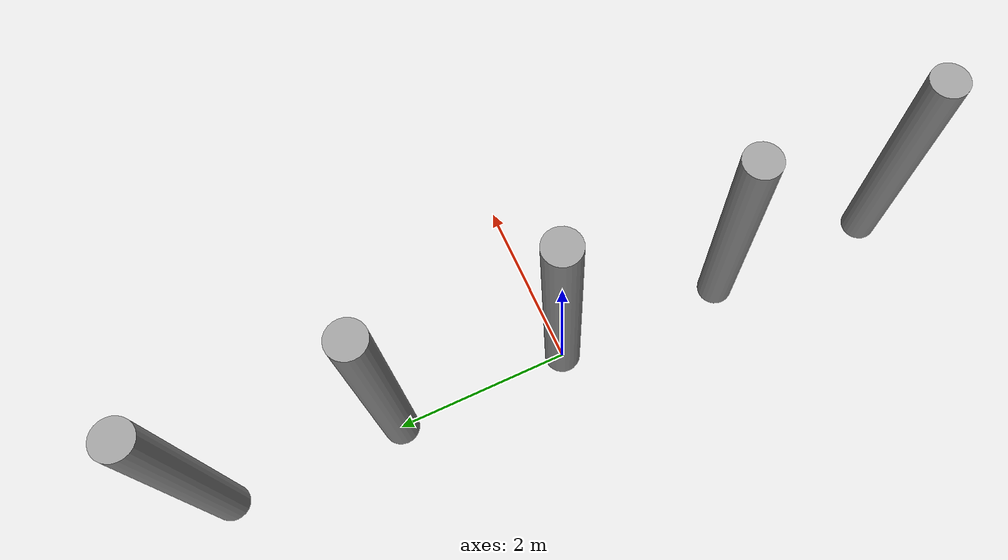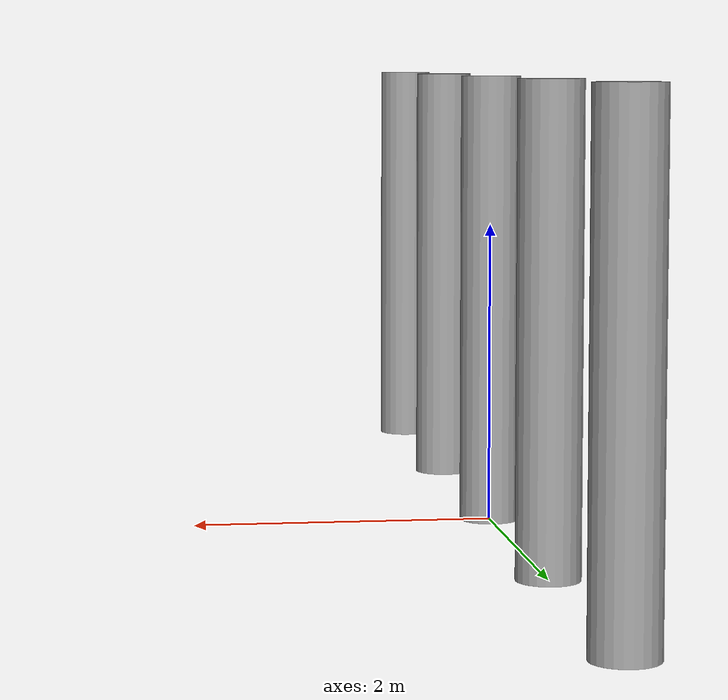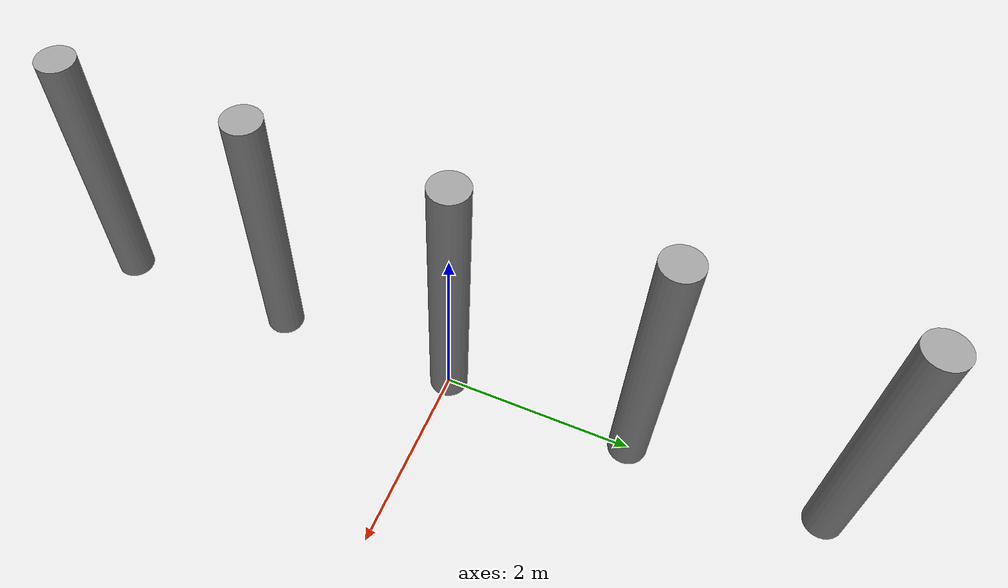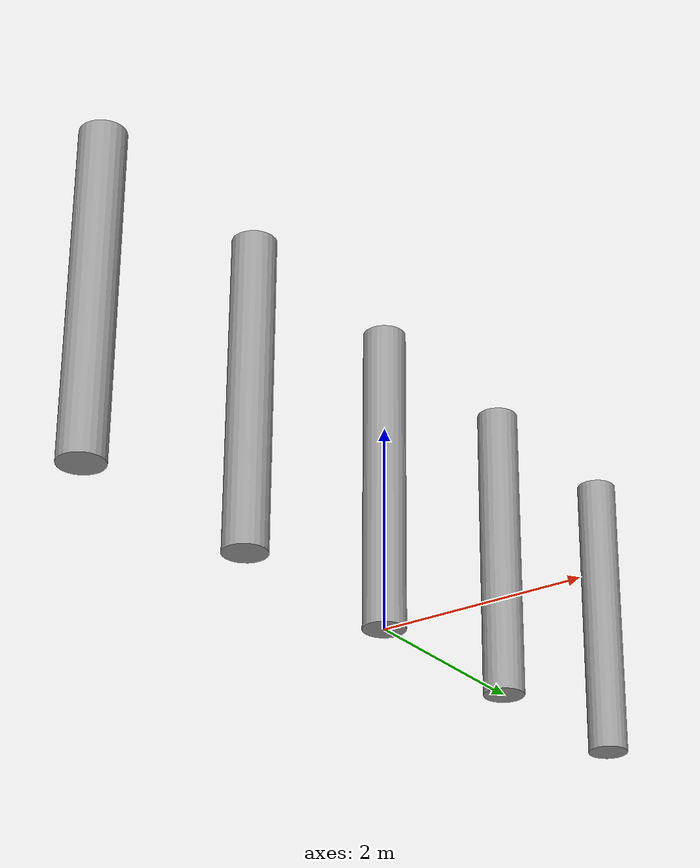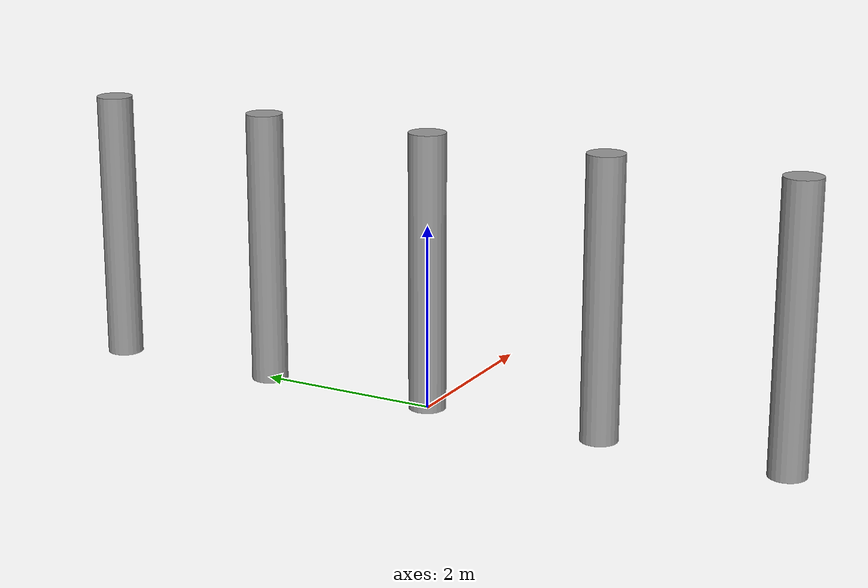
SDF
<?xml version="1.0" ?>
<sdf version="1.6">
  <model name="insulator_row">
    <static>true</static>
    <link name="link">
      <collision name="post_collision_1">
        <pose>0 -4 1.5 0 0 0</pose>
        <geometry><cylinder><radius>0.2</radius><length>3</length></cylinder></geometry>
      </collision>
      <collision name="post_collision_2">
        <pose>0 -2 1.5 0 0 0</pose>
        <geometry><cylinder><radius>0.2</radius><length>3</length></cylinder></geometry>
      </collision>
      <collision name="post_collision_3">
        <pose>0 0 1.5 0 0 0</pose>
        <geometry><cylinder><radius>0.2</radius><length>3</length></cylinder></geometry>
      </collision>
      <collision name="post_collision_4">
        <pose>0 2 1.5 0 0 0</pose>
        <geometry><cylinder><radius>0.2</radius><length>3</length></cylinder></geometry>
      </collision>
      <collision name="post_collision_5">
        <pose>0 4 1.5 0 0 0</pose>
        <geometry><cylinder><radius>0.2</radius><length>3</length></cylinder></geometry>
      </collision>

      <!-- VISUAL: A row of insulator posts -->
      <visual name="post_1">
        <pose>0 -4 1.5 0 0 0</pose>
        <geometry><cylinder><radius>0.2</radius><length>3</length></cylinder></geometry>
        <material><script><uri>file://media/materials/scripts/gazebo.material</uri><name>Gazebo/Grey</name></script></material>
      </visual>
      <visual name="post_2">
        <pose>0 -2 1.5 0 0 0</pose>
        <geometry><cylinder><radius>0.2</radius><length>3</length></cylinder></geometry>
        <material><script><uri>file://media/materials/scripts/gazebo.material</uri><name>Gazebo/Grey</name></script></material>
      </visual>
      <visual name="post_3">
        <pose>0 0 1.5 0 0 0</pose>
        <geometry><cylinder><radius>0.2</radius><length>3</length></cylinder></geometry>
        <material><script><uri>file://media/materials/scripts/gazebo.material</uri><name>Gazebo/Grey</name></script></material>
      </visual>
      <visual name="post_4">
        <pose>0 2 1.5 0 0 0</pose>
        <geometry><cylinder><radius>0.2</radius><length>3</length></cylinder></geometry>
        <material><script><uri>file://media/materials/scripts/gazebo.material</uri><name>Gazebo/Grey</name></script></material>
      </visual>
      <visual name="post_5">
        <pose>0 4 1.5 0 0 0</pose>
        <geometry><cylinder><radius>0.2</radius><length>3</length></cylinder></geometry>
        <material><script><uri>file://media/materials/scripts/gazebo.material</uri><name>Gazebo/Grey</name></script></material>
      </visual>
    </link>
  </model>
</sdf>
